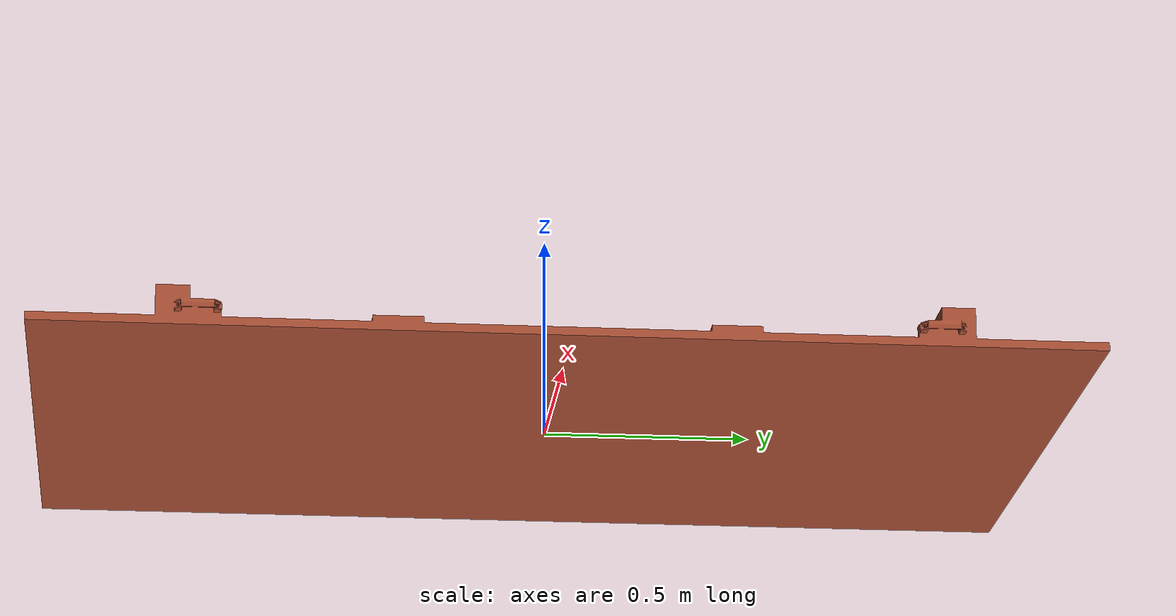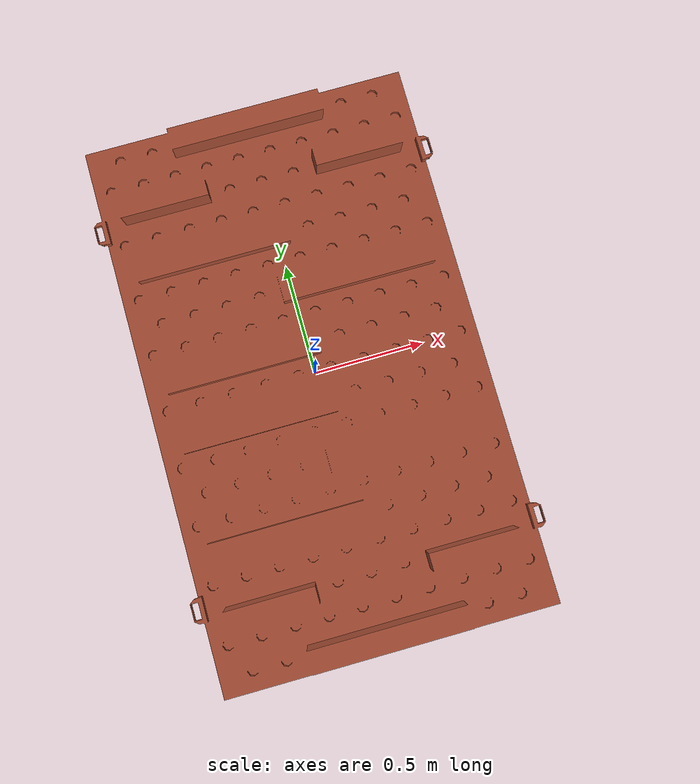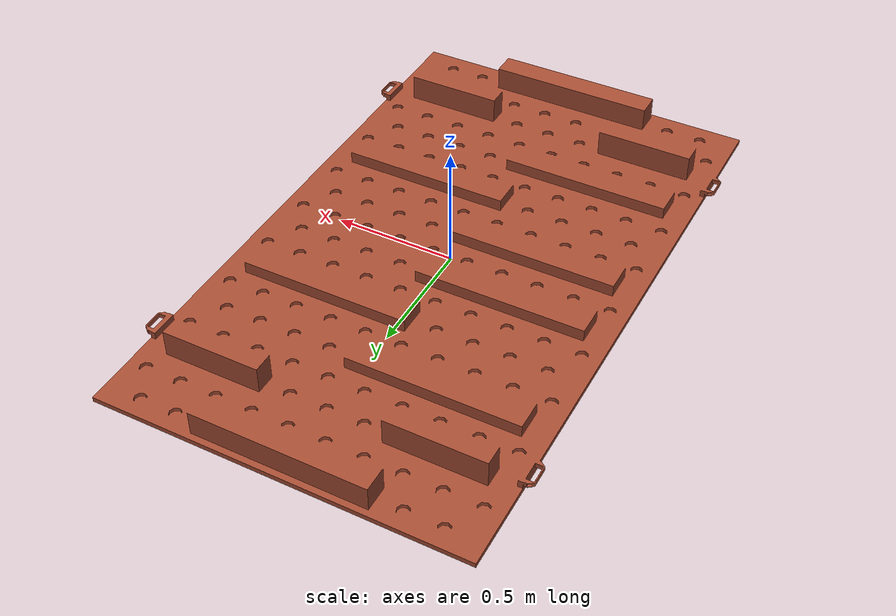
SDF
<?xml version="1.0" ?>
<sdf version="1.6">
  <model name="bredboard">
    <static>true</static>
    <pose frame=''>0. 0. 0. 1.57 0. 0.</pose>
    <link name="link">
      <collision name="collision">
        <geometry>
          <mesh>
            <uri>model://bredboard/meshes/bredboard.stl</uri>
            <scale>0.001 0.001 0.001</scale>
          </mesh>
        </geometry>
      </collision>
      <visual name="visual">
        <geometry>
          <mesh>
            <uri>model://bredboard/meshes/bredboard.stl</uri>
            <scale>0.001 0.001 0.001</scale>
          </mesh>
        </geometry>
       <material>
          <script>
            <name>Gazebo/Bricks</name>
            <uri>file://media/materials/scripts/gazebo.material</uri>
          </script>
        </material>
      </visual>
    </link>
  </model>
</sdf>
